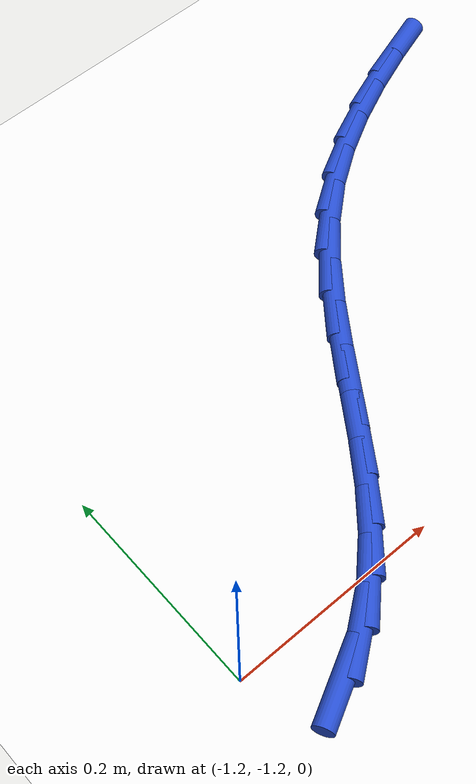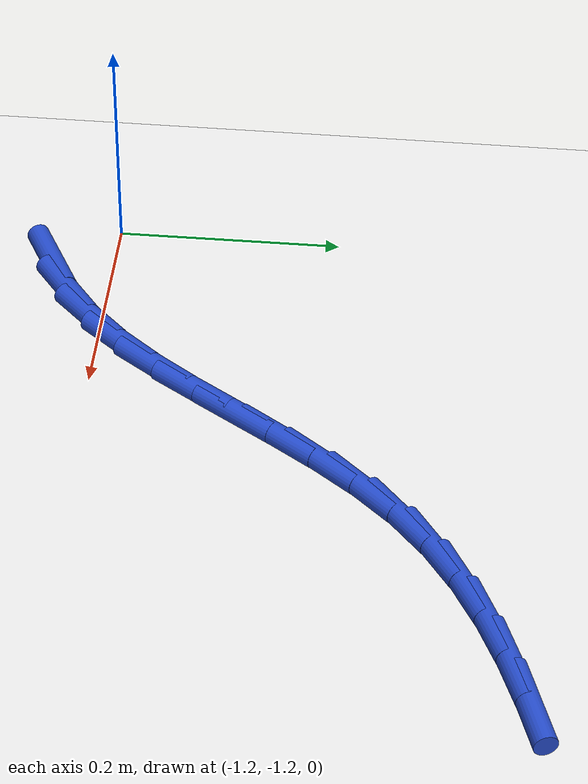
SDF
<sdf version="1.6">
 <world name="default">
  <model name="ground_plane">
   <static>1</static>
   <link name="link">
    <collision name="collision">
     <geometry><plane><normal>0 0 1</normal><size>100 100</size></plane></geometry>
     <surface><friction><ode><mu>100</mu><mu2>50</mu2></ode></friction></surface>
    </collision>
    <visual name="visual">
     <cast_shadows>0</cast_shadows>
     <geometry><plane><normal>0 0 1</normal><size>100 100</size></plane></geometry>
     <material>
      <script><uri>file://media/materials/scripts/gazebo.material</uri><name>Gazebo/WhiteGlow</name></script>
     </material>
    </visual>
   </link>
  </model>
  <model name="line">
   <link name="link_139">
    <pose>-1.1449475256810364 -1.255036137411758 0.01 0 1.57 0.48138956641472086</pose>
    <collision name="collision">
     <geometry><cylinder><radius>0.01</radius><length>0.08</length></cylinder></geometry>
    </collision>
    <visual name="visual">
     <material>
      <script><name>Gazebo/Blue</name><uri>file://media/materials/scripts/gazebo.material</uri></script>
     </material>
     <geometry><cylinder><radius>0.01</radius><length>0.08</length></cylinder></geometry>
    </visual>
   </link>
   <link name="link_140">
    <pose>-1.106533497367768 -1.2349694821286301 0.01 0 1.57 0.6477907403431064</pose>
    <collision name="collision">
     <geometry><cylinder><radius>0.01</radius><length>0.08</length></cylinder></geometry>
    </collision>
    <visual name="visual">
     <material>
      <script><name>Gazebo/Blue</name><uri>file://media/materials/scripts/gazebo.material</uri></script>
     </material>
     <geometry><cylinder><radius>0.01</radius><length>0.08</length></cylinder></geometry>
    </visual>
   </link>
   <link name="link_141">
    <pose>-1.0723130655578328 -1.2090740524266643 0.01 0 1.57 0.783621221274791</pose>
    <collision name="collision">
     <geometry><cylinder><radius>0.01</radius><length>0.08</length></cylinder></geometry>
    </collision>
    <visual name="visual">
     <material>
      <script><name>Gazebo/Blue</name><uri>file://media/materials/scripts/gazebo.material</uri></script>
     </material>
     <geometry><cylinder><radius>0.01</radius><length>0.08</length></cylinder></geometry>
    </visual>
   </link>
   <link name="link_142">
    <pose>-1.0415425504672555 -1.1784126983270176 0.01 0 1.57 0.883703530929782</pose>
    <collision name="collision">
     <geometry><cylinder><radius>0.01</radius><length>0.08</length></cylinder></geometry>
    </collision>
    <visual name="visual">
     <material>
      <script><name>Gazebo/Blue</name><uri>file://media/materials/scripts/gazebo.material</uri></script>
     </material>
     <geometry><cylinder><radius>0.01</radius><length>0.08</length></cylinder></geometry>
    </visual>
   </link>
   <link name="link_143">
    <pose>-1.0133939700007166 -1.144104418084199 0.01 0 1.57 0.9497733955445864</pose>
    <collision name="collision">
     <geometry><cylinder><radius>0.01</radius><length>0.08</length></cylinder></geometry>
    </collision>
    <visual name="visual">
     <material>
      <script><name>Gazebo/Blue</name><uri>file://media/materials/scripts/gazebo.material</uri></script>
     </material>
     <geometry><cylinder><radius>0.01</radius><length>0.08</length></cylinder></geometry>
    </visual>
   </link>
   <link name="link_144">
    <pose>-0.9870393420628961 -1.1072682099527158 0.01 0 1.57 0.984753104899202</pose>
    <collision name="collision">
     <geometry><cylinder><radius>0.01</radius><length>0.08</length></cylinder></geometry>
    </collision>
    <visual name="visual">
     <material>
      <script><name>Gazebo/Blue</name><uri>file://media/materials/scripts/gazebo.material</uri></script>
     </material>
     <geometry><cylinder><radius>0.01</radius><length>0.08</length></cylinder></geometry>
    </visual>
   </link>
   <link name="link_145">
    <pose>-0.9616506845584739 -1.0690230721870762 0.01 0 1.57 0.9907290103144313</pose>
    <collision name="collision">
     <geometry><cylinder><radius>0.01</radius><length>0.08</length></cylinder></geometry>
    </collision>
    <visual name="visual">
     <material>
      <script><name>Gazebo/Blue</name><uri>file://media/materials/scripts/gazebo.material</uri></script>
     </material>
     <geometry><cylinder><radius>0.01</radius><length>0.08</length></cylinder></geometry>
    </visual>
   </link>
   <link name="link_146">
    <pose>-0.9364000153921302 -1.0304880030417887 0.01 0 1.57 0.968188737674025</pose>
    <collision name="collision">
     <geometry><cylinder><radius>0.01</radius><length>0.08</length></cylinder></geometry>
    </collision>
    <visual name="visual">
     <material>
      <script><name>Gazebo/Blue</name><uri>file://media/materials/scripts/gazebo.material</uri></script>
     </material>
     <geometry><cylinder><radius>0.01</radius><length>0.08</length></cylinder></geometry>
    </visual>
   </link>
   <link name="link_147">
    <pose>-0.9104593524685453 -0.9927820007713605 0.01 0 1.57 0.9159352071202231</pose>
    <collision name="collision">
     <geometry><cylinder><radius>0.01</radius><length>0.08</length></cylinder></geometry>
    </collision>
    <visual name="visual">
     <material>
      <script><name>Gazebo/Blue</name><uri>file://media/materials/scripts/gazebo.material</uri></script>
     </material>
     <geometry><cylinder><radius>0.01</radius><length>0.08</length></cylinder></geometry>
    </visual>
   </link>
   <link name="link_148">
    <pose>-0.8830007136923987 -0.9570240636302998 0.01 0 1.57 0.8315491491642276</pose>
    <collision name="collision">
     <geometry><cylinder><radius>0.01</radius><length>0.08</length></cylinder></geometry>
    </collision>
    <visual name="visual">
     <material>
      <script><name>Gazebo/Blue</name><uri>file://media/materials/scripts/gazebo.material</uri></script>
     </material>
     <geometry><cylinder><radius>0.01</radius><length>0.08</length></cylinder></geometry>
    </visual>
   </link>
   <link name="link_149">
    <pose>-0.8531961169683714 -0.9243331898731157 0.01 0 1.57 0.7171521138776313</pose>
    <collision name="collision">
     <geometry><cylinder><radius>0.01</radius><length>0.08</length></cylinder></geometry>
    </collision>
    <visual name="visual">
     <material>
      <script><name>Gazebo/Blue</name><uri>file://media/materials/scripts/gazebo.material</uri></script>
     </material>
     <geometry><cylinder><radius>0.01</radius><length>0.08</length></cylinder></geometry>
    </visual>
   </link>
   <link name="link_150">
    <pose>-0.8203327541647432 -0.8956749630555665 0.01 0 1.57 0.6040780379527051</pose>
    <collision name="collision">
     <geometry><cylinder><radius>0.01</radius><length>0.08</length></cylinder></geometry>
    </collision>
    <visual name="visual">
     <material>
      <script><name>Gazebo/Blue</name><uri>file://media/materials/scripts/gazebo.material</uri></script>
     </material>
     <geometry><cylinder><radius>0.01</radius><length>0.08</length></cylinder></geometry>
    </visual>
   </link>
   <link name="link_151">
    <pose>-0.7845005459697063 -0.8709457111808976 0.01 0 1.57 0.5079477796697591</pose>
    <collision name="collision">
     <geometry><cylinder><radius>0.01</radius><length>0.08</length></cylinder></geometry>
    </collision>
    <visual name="visual">
     <material>
      <script><name>Gazebo/Blue</name><uri>file://media/materials/scripts/gazebo.material</uri></script>
     </material>
     <geometry><cylinder><radius>0.01</radius><length>0.08</length></cylinder></geometry>
    </visual>
   </link>
   <link name="link_152">
    <pose>-0.7461310671486309 -0.8495866701839012 0.01 0 1.57 0.42973627843196543</pose>
    <collision name="collision">
     <geometry><cylinder><radius>0.01</radius><length>0.08</length></cylinder></geometry>
    </collision>
    <visual name="visual">
     <material>
      <script><name>Gazebo/Blue</name><uri>file://media/materials/scripts/gazebo.material</uri></script>
     </material>
     <geometry><cylinder><radius>0.01</radius><length>0.08</length></cylinder></geometry>
    </visual>
   </link>
   <link name="link_153">
    <pose>-0.70565715151298 -0.8310373989174059 0.01 0 1.57 0.36903541030330544</pose>
    <collision name="collision">
     <geometry><cylinder><radius>0.01</radius><length>0.08</length></cylinder></geometry>
    </collision>
    <visual name="visual">
     <material>
      <script><name>Gazebo/Blue</name><uri>file://media/materials/scripts/gazebo.material</uri></script>
     </material>
     <geometry><cylinder><radius>0.01</radius><length>0.08</length></cylinder></geometry>
    </visual>
   </link>
   <link name="link_154">
    <pose>-0.6635116328742154 -0.81473745623424 0.01 0 1.57 0.32485130267646495</pose>
    <collision name="collision">
     <geometry><cylinder><radius>0.01</radius><length>0.08</length></cylinder></geometry>
    </collision>
    <visual name="visual">
     <material>
      <script><name>Gazebo/Blue</name><uri>file://media/materials/scripts/gazebo.material</uri></script>
     </material>
     <geometry><cylinder><radius>0.01</radius><length>0.08</length></cylinder></geometry>
    </visual>
   </link>
  </model>
 </world>
</sdf>
